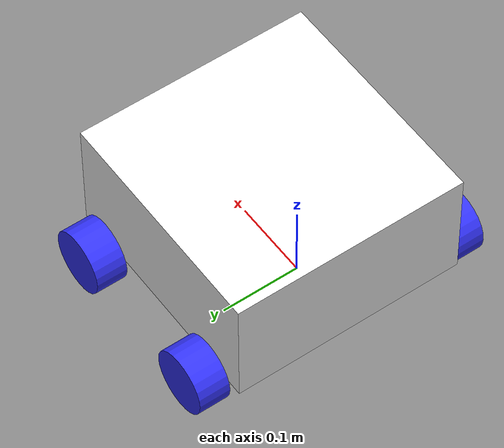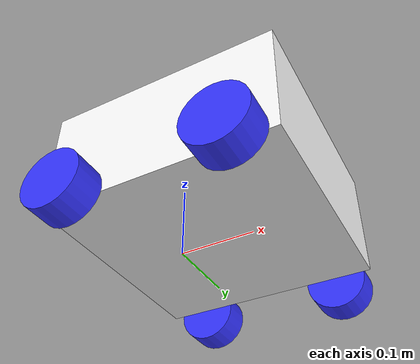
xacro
<?xml version="1.0"?>
<robot xmlns:xacro="http://www.ros.org/wiki/xacro" >

    <xacro:include filename="inertial_macros.xacro"/>

    <material name="white">
        <color rgba="1 1 1 1" />
    </material>

    <material name="orange">
        <color rgba="1 0.3 0.1 1"/>
    </material>

    <material name="blue">
        <color rgba="0.2 0.2 1 1"/>
    </material>

    <material name="black">
        <color rgba="0 0 0 1"/>
    </material>

    <material name="red">
        <color rgba="1 0 0 1"/>
    </material>

    <!-- BASE LINK -->

    <link name="base_link">

    </link>

    <!-- CHASSIS LINK -->

    <joint name="chassis_joint" type="fixed">
        <parent link="base_link"/>
        <child link="chassis"/>
        <origin xyz="-0.1 0 0"/>
    </joint>

    <link name="chassis">
        <visual>
            <origin xyz="0.15 0 0.075"/>
            <geometry>
                <box size="0.3 0.3 0.15"/>
            </geometry>
            <material name="white"/>
        </visual>
        <collision>
            <origin xyz="0.15 0 0.075"/>
            <geometry>
                <box size="0.3 0.3 0.15"/>
            </geometry>
        </collision>
        <xacro:inertial_box mass="0.5" x="0.3" y="0.3" z="0.15">
            <origin xyz="0.15 0 0.075" rpy="0 0 0"/>
        </xacro:inertial_box>
    </link>

    <gazebo reference="chassis">
        <material>Gazebo/Orange</material>
    </gazebo>

    <!-- LEFT WHEEL LINK -->

    <joint name="left_wheel_joint" type="continuous">
        <parent link="base_link"/>
        <child link="left_wheel"/>
        <origin xyz="-0.05 0.175 0" rpy="-${pi/2} 0 0" />
        <axis xyz="0 0 1"/>
    </joint>

    <link name="left_wheel">
        <visual>
            <geometry>
                <cylinder radius="0.04" length="0.04"/>
            </geometry>
            <material name="blue"/>
        </visual>
        <collision>
            <geometry>
                <cylinder radius="0.04" length="0.04"/>
            </geometry>
        </collision>
        <xacro:inertial_cylinder mass="0.1" length="0.04" radius="0.04">
            <origin xyz="0 0 0" rpy="0 0 0"/>
        </xacro:inertial_cylinder>
    </link>

    <gazebo reference="left_wheel">
        <material>Gazebo/Blue</material>
    </gazebo>

    <!-- RIGHT WHEEL LINK -->

    <joint name="right_wheel_joint" type="continuous">
        <parent link="base_link"/>
        <child link="right_wheel"/>
        <origin xyz="-0.05 -0.175 0" rpy="${pi/2} 0 0" />
        <axis xyz="0 0 -1"/>
    </joint>

    <link name="right_wheel">
        <visual>
            <geometry>
                <cylinder radius="0.04" length="0.04"/>
            </geometry>
            <material name="blue"/>
        </visual>
        <collision>
            <geometry>
                <cylinder radius="0.04" length="0.04"/>
            </geometry>
        </collision>
        <xacro:inertial_cylinder mass="0.1" length="0.04" radius="0.04">
            <origin xyz="0 0 0" rpy="0 0 0"/>
        </xacro:inertial_cylinder>
    </link>

    <gazebo reference="right_wheel">
        <material>Gazebo/Blue</material>
    </gazebo>

   <!-- FRONT SUPPORT WHEEL -->

<joint name="front_support_wheel_joint" type="fixed">
    <parent link="base_link"/>
    <child link="front_support_wheel"/>
    <origin xyz="0.15 0.175 0" rpy="-${pi/2} 0 0"/>
    <axis xyz="0 0 1"/>
</joint>

<link name="front_support_wheel">
    <visual>
        <geometry>
            <cylinder radius="0.04" length="0.04"/>
        </geometry>
        <material name="blue"/>
    </visual>
    <collision>
        <geometry>
            <cylinder radius="0.04" length="0.04"/>
        </geometry>
    </collision>
    <xacro:inertial_cylinder mass="0.05" length="0.04" radius="0.04">
        <origin xyz="0 0 0" rpy="0 0 0"/>
    </xacro:inertial_cylinder>
</link>

    <gazebo reference="front_support_wheel">
        <material>Gazebo/Blue</material>
        <mu1 value="0.001"/>
        <mu2 value="0.001"/>
    </gazebo>

<!-- REAR SUPPORT WHEEL -->

<joint name="rear_support_wheel_joint" type="fixed">
    <parent link="base_link"/>
    <child link="rear_support_wheel"/>
    <origin xyz="0.15 -0.175 0" rpy="-${pi/2} 0 0"/>
    <axis xyz="0 0 -1"/>
</joint>

<link name="rear_support_wheel">
    <visual>
        <geometry>
            <cylinder radius="0.04" length="0.04"/>
        </geometry>
        <material name="blue"/>
    </visual>
    <collision>
        <geometry>
            <cylinder radius="0.04" length="0.04"/>
        </geometry>
    </collision>
    <xacro:inertial_cylinder mass="0.05" length="0.04" radius="0.04">
        <origin xyz="0 0 0" rpy="0 0 0"/>
    </xacro:inertial_cylinder>
</link>

    <gazebo reference="rear_support_wheel">
        <material>Gazebo/Blue</material>
        <mu1 value="0.001"/>
        <mu2 value="0.001"/>
    </gazebo>
</robot>
